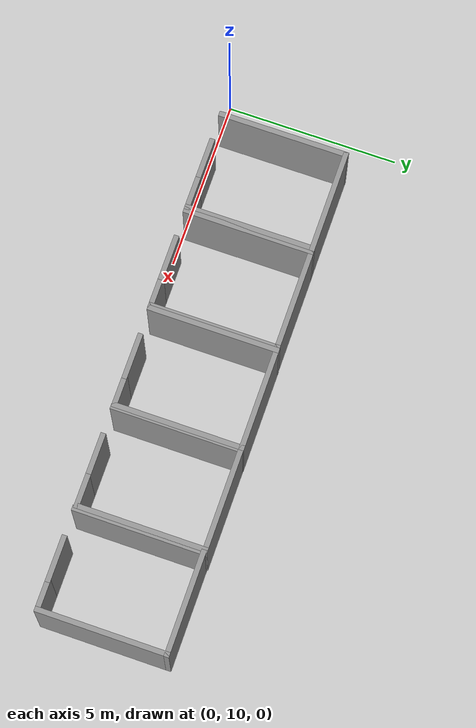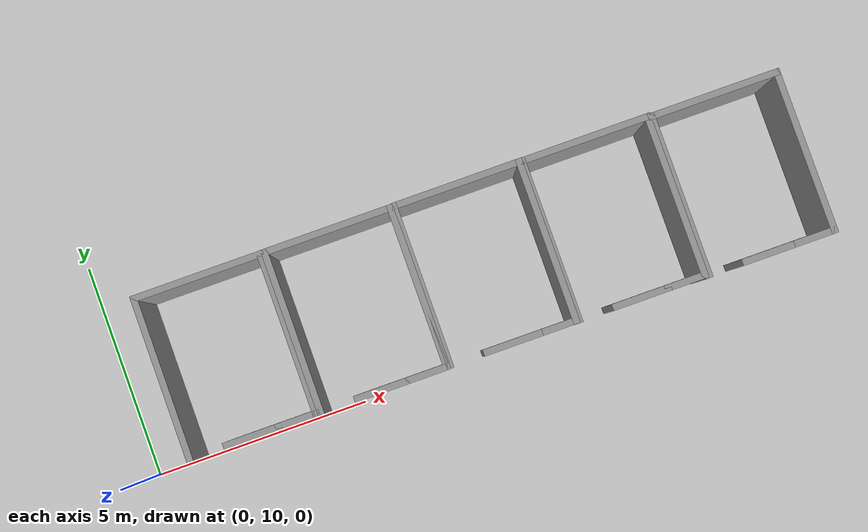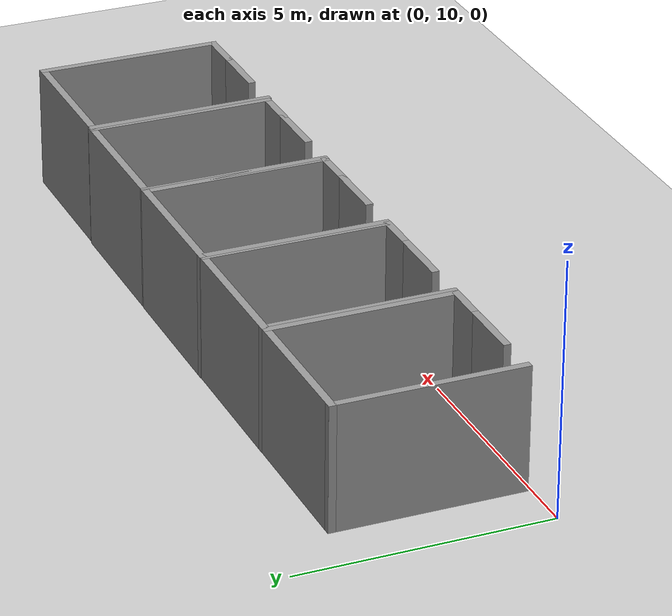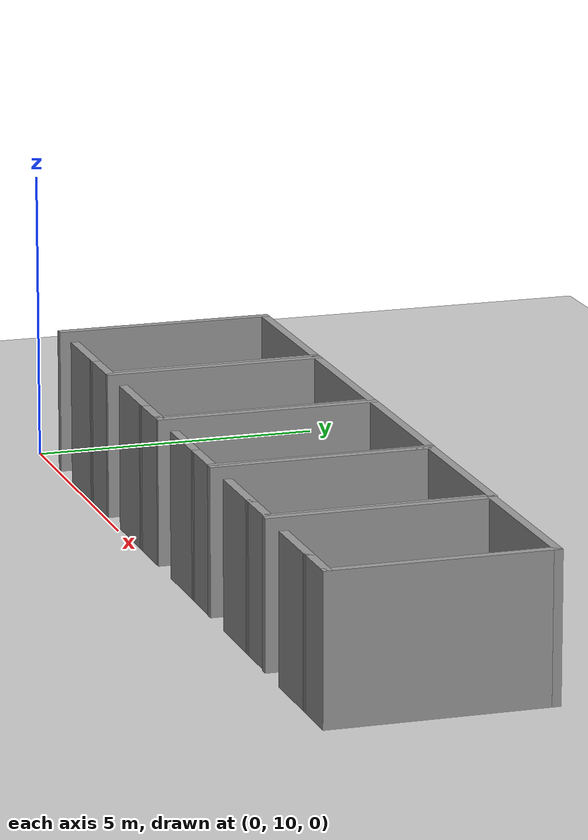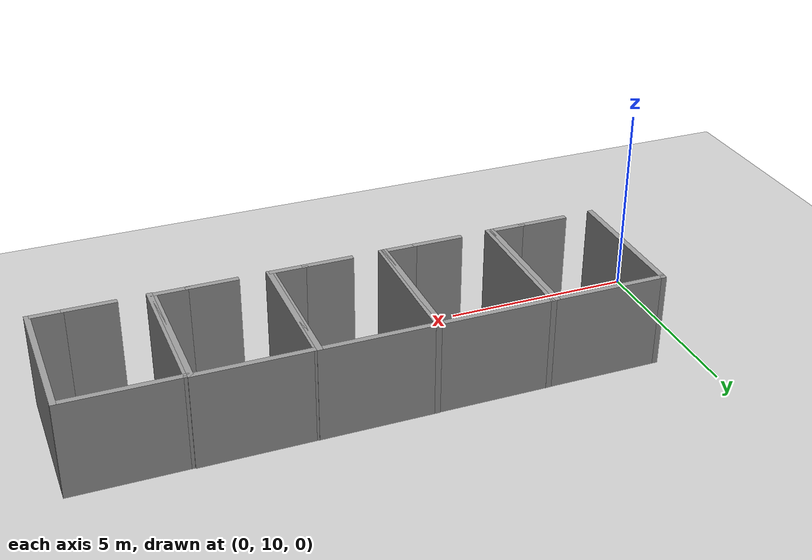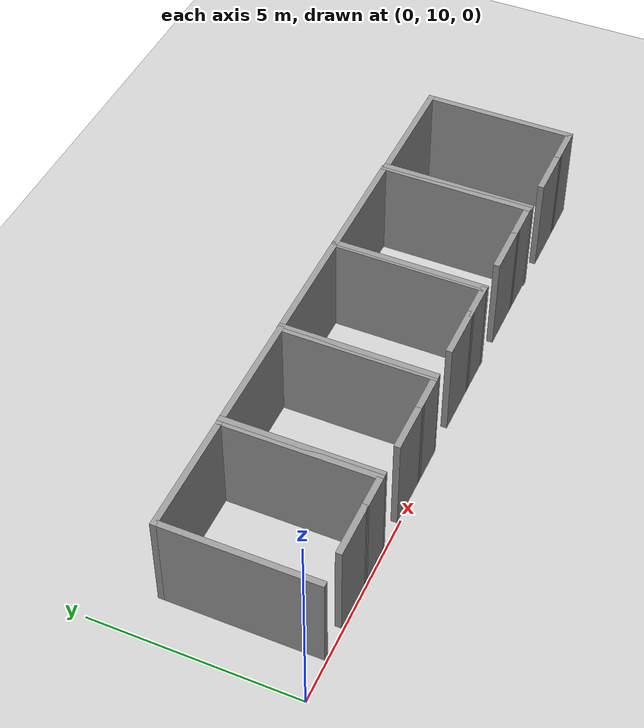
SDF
<sdf version="1.6">
 <world name="default">
  <model name="ground_plane">
   <static>1</static>
   <link name="link">
    <collision name="collision">
     <geometry><plane><normal>0 0 1</normal><size>100 100</size></plane></geometry>
     <surface><friction><ode><mu>100</mu><mu2>50</mu2></ode></friction></surface>
    </collision>
    <visual name="visual">
     <cast_shadows>0</cast_shadows>
     <geometry><plane><normal>0 0 1</normal><size>100 100</size></plane></geometry>
     <material>
      <script><uri>file://media/materials/scripts/gazebo.material</uri><name>Gazebo/Grey</name></script>
     </material>
    </visual>
   </link>
  </model>
  <model name="313-325_4">
   <link name="Wall_16">
    <pose>-1.44915 7.1e-05 0 0 0 -1.57088</pose>
    <visual name="Wall_16_Visual">
     <pose>0 0 1.25 0 -0 0</pose>
     <geometry><box><size>3.81 0.15 2.5</size></box></geometry>
     <material>
      <script><uri>file://media/materials/scripts/gazebo.material</uri><name>Gazebo/Grey</name></script>
      <ambient>1 1 1 1</ambient>
      <shader type="pixel"/>
     </material>
     <meta><layer>0</layer></meta>
    </visual>
    <collision name="Wall_16_Collision">
     <pose>0 0 1.25 0 -0 0</pose>
     <geometry><box><size>3.81 0.15 2.5</size></box></geometry>
     <surface>
      <friction>
       <ode><mu>1</mu><mu2>1</mu2><fdir1>0 0 0</fdir1><slip1>0</slip1><slip2>0</slip2></ode>
       <torsional>
        <coefficient>1</coefficient>
        <patch_radius>0</patch_radius>
        <surface_radius>0</surface_radius>
        <use_patch_radius>1</use_patch_radius>
        <ode><slip>0</slip></ode>
       </torsional>
      </friction>
      <bounce><restitution_coefficient>0</restitution_coefficient><threshold>1e+06</threshold></bounce>
      <contact>
       <collide_without_contact>0</collide_without_contact>
       <collide_without_contact_bitmask>1</collide_without_contact_bitmask>
       <collide_bitmask>1</collide_bitmask>
       <ode>
        <soft_cfm>0</soft_cfm>
        <soft_erp>0.2</soft_erp>
        <kp>1e+13</kp>
        <kd>1</kd>
        <max_vel>0.01</max_vel>
        <min_depth>0</min_depth>
       </ode>
       <bullet>
        <split_impulse>1</split_impulse>
        <split_impulse_penetration_threshold>-0.01</split_impulse_penetration_threshold>
        <soft_cfm>0</soft_cfm>
        <soft_erp>0.2</soft_erp>
        <kp>1e+13</kp>
        <kd>1</kd>
       </bullet>
      </contact>
     </surface>
    </collision>
   </link>
   <link name="Wall_18">
    <pose>1.449 -6.1e-05 0 0 -0 1.5708</pose>
    <visual name="Wall_18_Visual">
     <pose>0 0 1.25 0 -0 0</pose>
     <geometry><box><size>3.80974 0.15 2.5</size></box></geometry>
     <material>
      <script><uri>file://media/materials/scripts/gazebo.material</uri><name>Gazebo/Grey</name></script>
      <ambient>1 1 1 1</ambient>
      <shader type="pixel"/>
     </material>
     <meta><layer>0</layer></meta>
    </visual>
    <collision name="Wall_18_Collision">
     <pose>0 0 1.25 0 -0 0</pose>
     <geometry><box><size>3.80974 0.15 2.5</size></box></geometry>
     <surface>
      <friction>
       <ode><mu>1</mu><mu2>1</mu2><fdir1>0 0 0</fdir1><slip1>0</slip1><slip2>0</slip2></ode>
       <torsional>
        <coefficient>1</coefficient>
        <patch_radius>0</patch_radius>
        <surface_radius>0</surface_radius>
        <use_patch_radius>1</use_patch_radius>
        <ode><slip>0</slip></ode>
       </torsional>
      </friction>
      <bounce><restitution_coefficient>0</restitution_coefficient><threshold>1e+06</threshold></bounce>
      <contact>
       <collide_without_contact>0</collide_without_contact>
       <collide_without_contact_bitmask>1</collide_without_contact_bitmask>
       <collide_bitmask>1</collide_bitmask>
       <ode>
        <soft_cfm>0</soft_cfm>
        <soft_erp>0.2</soft_erp>
        <kp>1e+13</kp>
        <kd>1</kd>
        <max_vel>0.01</max_vel>
        <min_depth>0</min_depth>
       </ode>
       <bullet>
        <split_impulse>1</split_impulse>
        <split_impulse_penetration_threshold>-0.01</split_impulse_penetration_threshold>
        <soft_cfm>0</soft_cfm>
        <soft_erp>0.2</soft_erp>
        <kp>1e+13</kp>
        <kd>1</kd>
       </bullet>
      </contact>
     </surface>
    </collision>
   </link>
   <link name="Wall_19">
    <pose>2e-06 1.82994 0 0 -0 3.14159</pose>
    <visual name="Wall_19_Visual">
     <pose>0 0 1.25 0 -0 0</pose>
     <geometry><box><size>3.04862 0.15 2.5</size></box></geometry>
     <material>
      <script><uri>file://media/materials/scripts/gazebo.material</uri><name>Gazebo/Grey</name></script>
      <ambient>1 1 1 1</ambient>
      <shader type="pixel"/>
     </material>
     <meta><layer>0</layer></meta>
    </visual>
    <collision name="Wall_19_Collision">
     <pose>0 0 1.25 0 -0 0</pose>
     <geometry><box><size>3.04862 0.15 2.5</size></box></geometry>
     <surface>
      <friction>
       <ode><mu>1</mu><mu2>1</mu2><fdir1>0 0 0</fdir1><slip1>0</slip1><slip2>0</slip2></ode>
       <torsional>
        <coefficient>1</coefficient>
        <patch_radius>0</patch_radius>
        <surface_radius>0</surface_radius>
        <use_patch_radius>1</use_patch_radius>
        <ode><slip>0</slip></ode>
       </torsional>
      </friction>
      <bounce><restitution_coefficient>0</restitution_coefficient><threshold>1e+06</threshold></bounce>
      <contact>
       <collide_without_contact>0</collide_without_contact>
       <collide_without_contact_bitmask>1</collide_without_contact_bitmask>
       <collide_bitmask>1</collide_bitmask>
       <ode>
        <soft_cfm>0</soft_cfm>
        <soft_erp>0.2</soft_erp>
        <kp>1e+13</kp>
        <kd>1</kd>
        <max_vel>0.01</max_vel>
        <min_depth>0</min_depth>
       </ode>
       <bullet>
        <split_impulse>1</split_impulse>
        <split_impulse_penetration_threshold>-0.01</split_impulse_penetration_threshold>
        <soft_cfm>0</soft_cfm>
        <soft_erp>0.2</soft_erp>
        <kp>1e+13</kp>
        <kd>1</kd>
       </bullet>
      </contact>
     </surface>
    </collision>
   </link>
   <link name="Wall_22">
    <pose>-0.000153 -1.82993 0 0 0 -0.00022</pose>
    <visual name="Wall_22_Visual">
     <pose>0 0 1.25 0 -0 0</pose>
     <geometry><box><size>1.34831 0.15 2.5</size></box></geometry>
     <material>
      <script><uri>file://media/materials/scripts/gazebo.material</uri><name>Gazebo/Grey</name></script>
      <ambient>1 1 1 1</ambient>
      <shader type="pixel"/>
     </material>
     <meta><layer>0</layer></meta>
    </visual>
    <collision name="Wall_22_Collision">
     <pose>0 0 1.25 0 -0 0</pose>
     <geometry><box><size>1.34831 0.15 2.5</size></box></geometry>
     <surface>
      <friction>
       <ode><mu>1</mu><mu2>1</mu2><fdir1>0 0 0</fdir1><slip1>0</slip1><slip2>0</slip2></ode>
       <torsional>
        <coefficient>1</coefficient>
        <patch_radius>0</patch_radius>
        <surface_radius>0</surface_radius>
        <use_patch_radius>1</use_patch_radius>
        <ode><slip>0</slip></ode>
       </torsional>
      </friction>
      <bounce><restitution_coefficient>0</restitution_coefficient><threshold>1e+06</threshold></bounce>
      <contact>
       <collide_without_contact>0</collide_without_contact>
       <collide_without_contact_bitmask>1</collide_without_contact_bitmask>
       <collide_bitmask>1</collide_bitmask>
       <ode>
        <soft_cfm>0</soft_cfm>
        <soft_erp>0.2</soft_erp>
        <kp>1e+13</kp>
        <kd>1</kd>
        <max_vel>0.01</max_vel>
        <min_depth>0</min_depth>
       </ode>
       <bullet>
        <split_impulse>1</split_impulse>
        <split_impulse_penetration_threshold>-0.01</split_impulse_penetration_threshold>
        <soft_cfm>0</soft_cfm>
        <soft_erp>0.2</soft_erp>
        <kp>1e+13</kp>
        <kd>1</kd>
       </bullet>
      </contact>
     </surface>
    </collision>
   </link>
   <link name="Wall_23">
    <pose>1.024 -1.83006 0 0 -0 0</pose>
    <visual name="Wall_23_Visual">
     <pose>0 0 1.25 0 -0 0</pose>
     <geometry><box><size>1 0.15 2.5</size></box></geometry>
     <material>
      <script><uri>file://media/materials/scripts/gazebo.material</uri><name>Gazebo/Grey</name></script>
      <ambient>1 1 1 1</ambient>
      <shader type="pixel"/>
     </material>
     <meta><layer>0</layer></meta>
    </visual>
    <collision name="Wall_23_Collision">
     <pose>0 0 1.25 0 -0 0</pose>
     <geometry><box><size>1 0.15 2.5</size></box></geometry>
     <surface>
      <friction>
       <ode><mu>1</mu><mu2>1</mu2><fdir1>0 0 0</fdir1><slip1>0</slip1><slip2>0</slip2></ode>
       <torsional>
        <coefficient>1</coefficient>
        <patch_radius>0</patch_radius>
        <surface_radius>0</surface_radius>
        <use_patch_radius>1</use_patch_radius>
        <ode><slip>0</slip></ode>
       </torsional>
      </friction>
      <bounce><restitution_coefficient>0</restitution_coefficient><threshold>1e+06</threshold></bounce>
      <contact>
       <collide_without_contact>0</collide_without_contact>
       <collide_without_contact_bitmask>1</collide_without_contact_bitmask>
       <collide_bitmask>1</collide_bitmask>
       <ode>
        <soft_cfm>0</soft_cfm>
        <soft_erp>0.2</soft_erp>
        <kp>1e+13</kp>
        <kd>1</kd>
        <max_vel>0.01</max_vel>
        <min_depth>0</min_depth>
       </ode>
       <bullet>
        <split_impulse>1</split_impulse>
        <split_impulse_penetration_threshold>-0.01</split_impulse_penetration_threshold>
        <soft_cfm>0</soft_cfm>
        <soft_erp>0.2</soft_erp>
        <kp>1e+13</kp>
        <kd>1</kd>
       </bullet>
      </contact>
     </surface>
    </collision>
   </link>
   <static>1</static>
   <pose>14.4898 11.9433 0 0 -0 0</pose>
  </model>
  <model name="313-325_5">
   <link name="Wall_16">
    <pose>-1.44915 7.1e-05 0 0 0 -1.57088</pose>
    <visual name="Wall_16_Visual">
     <pose>0 0 1.25 0 -0 0</pose>
     <geometry><box><size>3.81 0.15 2.5</size></box></geometry>
     <material>
      <script><uri>file://media/materials/scripts/gazebo.material</uri><name>Gazebo/Grey</name></script>
      <ambient>1 1 1 1</ambient>
      <shader type="pixel"/>
     </material>
     <meta><layer>0</layer></meta>
    </visual>
    <collision name="Wall_16_Collision">
     <pose>0 0 1.25 0 -0 0</pose>
     <geometry><box><size>3.81 0.15 2.5</size></box></geometry>
     <surface>
      <friction>
       <ode><mu>1</mu><mu2>1</mu2><fdir1>0 0 0</fdir1><slip1>0</slip1><slip2>0</slip2></ode>
       <torsional>
        <coefficient>1</coefficient>
        <patch_radius>0</patch_radius>
        <surface_radius>0</surface_radius>
        <use_patch_radius>1</use_patch_radius>
        <ode><slip>0</slip></ode>
       </torsional>
      </friction>
      <bounce><restitution_coefficient>0</restitution_coefficient><threshold>1e+06</threshold></bounce>
      <contact>
       <collide_without_contact>0</collide_without_contact>
       <collide_without_contact_bitmask>1</collide_without_contact_bitmask>
       <collide_bitmask>1</collide_bitmask>
       <ode>
        <soft_cfm>0</soft_cfm>
        <soft_erp>0.2</soft_erp>
        <kp>1e+13</kp>
        <kd>1</kd>
        <max_vel>0.01</max_vel>
        <min_depth>0</min_depth>
       </ode>
       <bullet>
        <split_impulse>1</split_impulse>
        <split_impulse_penetration_threshold>-0.01</split_impulse_penetration_threshold>
        <soft_cfm>0</soft_cfm>
        <soft_erp>0.2</soft_erp>
        <kp>1e+13</kp>
        <kd>1</kd>
       </bullet>
      </contact>
     </surface>
    </collision>
   </link>
   <link name="Wall_18">
    <pose>1.449 -6.1e-05 0 0 -0 1.5708</pose>
    <visual name="Wall_18_Visual">
     <pose>0 0 1.25 0 -0 0</pose>
     <geometry><box><size>3.80974 0.15 2.5</size></box></geometry>
     <material>
      <script><uri>file://media/materials/scripts/gazebo.material</uri><name>Gazebo/Grey</name></script>
      <ambient>1 1 1 1</ambient>
      <shader type="pixel"/>
     </material>
     <meta><layer>0</layer></meta>
    </visual>
    <collision name="Wall_18_Collision">
     <pose>0 0 1.25 0 -0 0</pose>
     <geometry><box><size>3.80974 0.15 2.5</size></box></geometry>
     <surface>
      <friction>
       <ode><mu>1</mu><mu2>1</mu2><fdir1>0 0 0</fdir1><slip1>0</slip1><slip2>0</slip2></ode>
       <torsional>
        <coefficient>1</coefficient>
        <patch_radius>0</patch_radius>
        <surface_radius>0</surface_radius>
        <use_patch_radius>1</use_patch_radius>
        <ode><slip>0</slip></ode>
       </torsional>
      </friction>
      <bounce><restitution_coefficient>0</restitution_coefficient><threshold>1e+06</threshold></bounce>
      <contact>
       <collide_without_contact>0</collide_without_contact>
       <collide_without_contact_bitmask>1</collide_without_contact_bitmask>
       <collide_bitmask>1</collide_bitmask>
       <ode>
        <soft_cfm>0</soft_cfm>
        <soft_erp>0.2</soft_erp>
        <kp>1e+13</kp>
        <kd>1</kd>
        <max_vel>0.01</max_vel>
        <min_depth>0</min_depth>
       </ode>
       <bullet>
        <split_impulse>1</split_impulse>
        <split_impulse_penetration_threshold>-0.01</split_impulse_penetration_threshold>
        <soft_cfm>0</soft_cfm>
        <soft_erp>0.2</soft_erp>
        <kp>1e+13</kp>
        <kd>1</kd>
       </bullet>
      </contact>
     </surface>
    </collision>
   </link>
   <link name="Wall_19">
    <pose>2e-06 1.82994 0 0 -0 3.14159</pose>
    <visual name="Wall_19_Visual">
     <pose>0 0 1.25 0 -0 0</pose>
     <geometry><box><size>3.04862 0.15 2.5</size></box></geometry>
     <material>
      <script><uri>file://media/materials/scripts/gazebo.material</uri><name>Gazebo/Grey</name></script>
      <ambient>1 1 1 1</ambient>
      <shader type="pixel"/>
     </material>
     <meta><layer>0</layer></meta>
    </visual>
    <collision name="Wall_19_Collision">
     <pose>0 0 1.25 0 -0 0</pose>
     <geometry><box><size>3.04862 0.15 2.5</size></box></geometry>
     <surface>
      <friction>
       <ode><mu>1</mu><mu2>1</mu2><fdir1>0 0 0</fdir1><slip1>0</slip1><slip2>0</slip2></ode>
       <torsional>
        <coefficient>1</coefficient>
        <patch_radius>0</patch_radius>
        <surface_radius>0</surface_radius>
        <use_patch_radius>1</use_patch_radius>
        <ode><slip>0</slip></ode>
       </torsional>
      </friction>
      <bounce><restitution_coefficient>0</restitution_coefficient><threshold>1e+06</threshold></bounce>
      <contact>
       <collide_without_contact>0</collide_without_contact>
       <collide_without_contact_bitmask>1</collide_without_contact_bitmask>
       <collide_bitmask>1</collide_bitmask>
       <ode>
        <soft_cfm>0</soft_cfm>
        <soft_erp>0.2</soft_erp>
        <kp>1e+13</kp>
        <kd>1</kd>
        <max_vel>0.01</max_vel>
        <min_depth>0</min_depth>
       </ode>
       <bullet>
        <split_impulse>1</split_impulse>
        <split_impulse_penetration_threshold>-0.01</split_impulse_penetration_threshold>
        <soft_cfm>0</soft_cfm>
        <soft_erp>0.2</soft_erp>
        <kp>1e+13</kp>
        <kd>1</kd>
       </bullet>
      </contact>
     </surface>
    </collision>
   </link>
   <link name="Wall_22">
    <pose>-0.000153 -1.82993 0 0 0 -0.00022</pose>
    <visual name="Wall_22_Visual">
     <pose>0 0 1.25 0 -0 0</pose>
     <geometry><box><size>1.34831 0.15 2.5</size></box></geometry>
     <material>
      <script><uri>file://media/materials/scripts/gazebo.material</uri><name>Gazebo/Grey</name></script>
      <ambient>1 1 1 1</ambient>
      <shader type="pixel"/>
     </material>
     <meta><layer>0</layer></meta>
    </visual>
    <collision name="Wall_22_Collision">
     <pose>0 0 1.25 0 -0 0</pose>
     <geometry><box><size>1.34831 0.15 2.5</size></box></geometry>
     <surface>
      <friction>
       <ode><mu>1</mu><mu2>1</mu2><fdir1>0 0 0</fdir1><slip1>0</slip1><slip2>0</slip2></ode>
       <torsional>
        <coefficient>1</coefficient>
        <patch_radius>0</patch_radius>
        <surface_radius>0</surface_radius>
        <use_patch_radius>1</use_patch_radius>
        <ode><slip>0</slip></ode>
       </torsional>
      </friction>
      <bounce><restitution_coefficient>0</restitution_coefficient><threshold>1e+06</threshold></bounce>
      <contact>
       <collide_without_contact>0</collide_without_contact>
       <collide_without_contact_bitmask>1</collide_without_contact_bitmask>
       <collide_bitmask>1</collide_bitmask>
       <ode>
        <soft_cfm>0</soft_cfm>
        <soft_erp>0.2</soft_erp>
        <kp>1e+13</kp>
        <kd>1</kd>
        <max_vel>0.01</max_vel>
        <min_depth>0</min_depth>
       </ode>
       <bullet>
        <split_impulse>1</split_impulse>
        <split_impulse_penetration_threshold>-0.01</split_impulse_penetration_threshold>
        <soft_cfm>0</soft_cfm>
        <soft_erp>0.2</soft_erp>
        <kp>1e+13</kp>
        <kd>1</kd>
       </bullet>
      </contact>
     </surface>
    </collision>
   </link>
   <link name="Wall_23">
    <pose>1.024 -1.83006 0 0 -0 0</pose>
    <visual name="Wall_23_Visual">
     <pose>0 0 1.25 0 -0 0</pose>
     <geometry><box><size>1 0.15 2.5</size></box></geometry>
     <material>
      <script><uri>file://media/materials/scripts/gazebo.material</uri><name>Gazebo/Grey</name></script>
      <ambient>1 1 1 1</ambient>
      <shader type="pixel"/>
     </material>
     <meta><layer>0</layer></meta>
    </visual>
    <collision name="Wall_23_Collision">
     <pose>0 0 1.25 0 -0 0</pose>
     <geometry><box><size>1 0.15 2.5</size></box></geometry>
     <surface>
      <friction>
       <ode><mu>1</mu><mu2>1</mu2><fdir1>0 0 0</fdir1><slip1>0</slip1><slip2>0</slip2></ode>
       <torsional>
        <coefficient>1</coefficient>
        <patch_radius>0</patch_radius>
        <surface_radius>0</surface_radius>
        <use_patch_radius>1</use_patch_radius>
        <ode><slip>0</slip></ode>
       </torsional>
      </friction>
      <bounce><restitution_coefficient>0</restitution_coefficient><threshold>1e+06</threshold></bounce>
      <contact>
       <collide_without_contact>0</collide_without_contact>
       <collide_without_contact_bitmask>1</collide_without_contact_bitmask>
       <collide_bitmask>1</collide_bitmask>
       <ode>
        <soft_cfm>0</soft_cfm>
        <soft_erp>0.2</soft_erp>
        <kp>1e+13</kp>
        <kd>1</kd>
        <max_vel>0.01</max_vel>
        <min_depth>0</min_depth>
       </ode>
       <bullet>
        <split_impulse>1</split_impulse>
        <split_impulse_penetration_threshold>-0.01</split_impulse_penetration_threshold>
        <soft_cfm>0</soft_cfm>
        <soft_erp>0.2</soft_erp>
        <kp>1e+13</kp>
        <kd>1</kd>
       </bullet>
      </contact>
     </surface>
    </collision>
   </link>
   <static>1</static>
   <pose>11.5072 11.9674 0 0 -0 0</pose>
  </model>
  <model name="313-325_6">
   <link name="Wall_16">
    <pose>-1.44915 7.1e-05 0 0 0 -1.57088</pose>
    <visual name="Wall_16_Visual">
     <pose>0 0 1.25 0 -0 0</pose>
     <geometry><box><size>3.81 0.15 2.5</size></box></geometry>
     <material>
      <script><uri>file://media/materials/scripts/gazebo.material</uri><name>Gazebo/Grey</name></script>
      <ambient>1 1 1 1</ambient>
      <shader type="pixel"/>
     </material>
     <meta><layer>0</layer></meta>
    </visual>
    <collision name="Wall_16_Collision">
     <pose>0 0 1.25 0 -0 0</pose>
     <geometry><box><size>3.81 0.15 2.5</size></box></geometry>
     <surface>
      <friction>
       <ode><mu>1</mu><mu2>1</mu2><fdir1>0 0 0</fdir1><slip1>0</slip1><slip2>0</slip2></ode>
       <torsional>
        <coefficient>1</coefficient>
        <patch_radius>0</patch_radius>
        <surface_radius>0</surface_radius>
        <use_patch_radius>1</use_patch_radius>
        <ode><slip>0</slip></ode>
       </torsional>
      </friction>
      <bounce><restitution_coefficient>0</restitution_coefficient><threshold>1e+06</threshold></bounce>
      <contact>
       <collide_without_contact>0</collide_without_contact>
       <collide_without_contact_bitmask>1</collide_without_contact_bitmask>
       <collide_bitmask>1</collide_bitmask>
       <ode>
        <soft_cfm>0</soft_cfm>
        <soft_erp>0.2</soft_erp>
        <kp>1e+13</kp>
        <kd>1</kd>
        <max_vel>0.01</max_vel>
        <min_depth>0</min_depth>
       </ode>
       <bullet>
        <split_impulse>1</split_impulse>
        <split_impulse_penetration_threshold>-0.01</split_impulse_penetration_threshold>
        <soft_cfm>0</soft_cfm>
        <soft_erp>0.2</soft_erp>
        <kp>1e+13</kp>
        <kd>1</kd>
       </bullet>
      </contact>
     </surface>
    </collision>
   </link>
   <link name="Wall_18">
    <pose>1.449 -6.1e-05 0 0 -0 1.5708</pose>
    <visual name="Wall_18_Visual">
     <pose>0 0 1.25 0 -0 0</pose>
     <geometry><box><size>3.80974 0.15 2.5</size></box></geometry>
     <material>
      <script><uri>file://media/materials/scripts/gazebo.material</uri><name>Gazebo/Grey</name></script>
      <ambient>1 1 1 1</ambient>
      <shader type="pixel"/>
     </material>
     <meta><layer>0</layer></meta>
    </visual>
    <collision name="Wall_18_Collision">
     <pose>0 0 1.25 0 -0 0</pose>
     <geometry><box><size>3.80974 0.15 2.5</size></box></geometry>
     <surface>
      <friction>
       <ode><mu>1</mu><mu2>1</mu2><fdir1>0 0 0</fdir1><slip1>0</slip1><slip2>0</slip2></ode>
       <torsional>
        <coefficient>1</coefficient>
        <patch_radius>0</patch_radius>
        <surface_radius>0</surface_radius>
        <use_patch_radius>1</use_patch_radius>
        <ode><slip>0</slip></ode>
       </torsional>
      </friction>
      <bounce><restitution_coefficient>0</restitution_coefficient><threshold>1e+06</threshold></bounce>
      <contact>
       <collide_without_contact>0</collide_without_contact>
       <collide_without_contact_bitmask>1</collide_without_contact_bitmask>
       <collide_bitmask>1</collide_bitmask>
       <ode>
        <soft_cfm>0</soft_cfm>
        <soft_erp>0.2</soft_erp>
        <kp>1e+13</kp>
        <kd>1</kd>
        <max_vel>0.01</max_vel>
        <min_depth>0</min_depth>
       </ode>
       <bullet>
        <split_impulse>1</split_impulse>
        <split_impulse_penetration_threshold>-0.01</split_impulse_penetration_threshold>
        <soft_cfm>0</soft_cfm>
        <soft_erp>0.2</soft_erp>
        <kp>1e+13</kp>
        <kd>1</kd>
       </bullet>
      </contact>
     </surface>
    </collision>
   </link>
   <link name="Wall_19">
    <pose>2e-06 1.82994 0 0 -0 3.14159</pose>
    <visual name="Wall_19_Visual">
     <pose>0 0 1.25 0 -0 0</pose>
     <geometry><box><size>3.04862 0.15 2.5</size></box></geometry>
     <material>
      <script><uri>file://media/materials/scripts/gazebo.material</uri><name>Gazebo/Grey</name></script>
      <ambient>1 1 1 1</ambient>
      <shader type="pixel"/>
     </material>
     <meta><layer>0</layer></meta>
    </visual>
    <collision name="Wall_19_Collision">
     <pose>0 0 1.25 0 -0 0</pose>
     <geometry><box><size>3.04862 0.15 2.5</size></box></geometry>
     <surface>
      <friction>
       <ode><mu>1</mu><mu2>1</mu2><fdir1>0 0 0</fdir1><slip1>0</slip1><slip2>0</slip2></ode>
       <torsional>
        <coefficient>1</coefficient>
        <patch_radius>0</patch_radius>
        <surface_radius>0</surface_radius>
        <use_patch_radius>1</use_patch_radius>
        <ode><slip>0</slip></ode>
       </torsional>
      </friction>
      <bounce><restitution_coefficient>0</restitution_coefficient><threshold>1e+06</threshold></bounce>
      <contact>
       <collide_without_contact>0</collide_without_contact>
       <collide_without_contact_bitmask>1</collide_without_contact_bitmask>
       <collide_bitmask>1</collide_bitmask>
       <ode>
        <soft_cfm>0</soft_cfm>
        <soft_erp>0.2</soft_erp>
        <kp>1e+13</kp>
        <kd>1</kd>
        <max_vel>0.01</max_vel>
        <min_depth>0</min_depth>
       </ode>
       <bullet>
        <split_impulse>1</split_impulse>
        <split_impulse_penetration_threshold>-0.01</split_impulse_penetration_threshold>
        <soft_cfm>0</soft_cfm>
        <soft_erp>0.2</soft_erp>
        <kp>1e+13</kp>
        <kd>1</kd>
       </bullet>
      </contact>
     </surface>
    </collision>
   </link>
   <link name="Wall_22">
    <pose>-0.000153 -1.82993 0 0 0 -0.00022</pose>
    <visual name="Wall_22_Visual">
     <pose>0 0 1.25 0 -0 0</pose>
     <geometry><box><size>1.34831 0.15 2.5</size></box></geometry>
     <material>
      <script><uri>file://media/materials/scripts/gazebo.material</uri><name>Gazebo/Grey</name></script>
      <ambient>1 1 1 1</ambient>
      <shader type="pixel"/>
     </material>
     <meta><layer>0</layer></meta>
    </visual>
    <collision name="Wall_22_Collision">
     <pose>0 0 1.25 0 -0 0</pose>
     <geometry><box><size>1.34831 0.15 2.5</size></box></geometry>
     <surface>
      <friction>
       <ode><mu>1</mu><mu2>1</mu2><fdir1>0 0 0</fdir1><slip1>0</slip1><slip2>0</slip2></ode>
       <torsional>
        <coefficient>1</coefficient>
        <patch_radius>0</patch_radius>
        <surface_radius>0</surface_radius>
        <use_patch_radius>1</use_patch_radius>
        <ode><slip>0</slip></ode>
       </torsional>
      </friction>
      <bounce><restitution_coefficient>0</restitution_coefficient><threshold>1e+06</threshold></bounce>
      <contact>
       <collide_without_contact>0</collide_without_contact>
       <collide_without_contact_bitmask>1</collide_without_contact_bitmask>
       <collide_bitmask>1</collide_bitmask>
       <ode>
        <soft_cfm>0</soft_cfm>
        <soft_erp>0.2</soft_erp>
        <kp>1e+13</kp>
        <kd>1</kd>
        <max_vel>0.01</max_vel>
        <min_depth>0</min_depth>
       </ode>
       <bullet>
        <split_impulse>1</split_impulse>
        <split_impulse_penetration_threshold>-0.01</split_impulse_penetration_threshold>
        <soft_cfm>0</soft_cfm>
        <soft_erp>0.2</soft_erp>
        <kp>1e+13</kp>
        <kd>1</kd>
       </bullet>
      </contact>
     </surface>
    </collision>
   </link>
   <link name="Wall_23">
    <pose>1.024 -1.83006 0 0 -0 0</pose>
    <visual name="Wall_23_Visual">
     <pose>0 0 1.25 0 -0 0</pose>
     <geometry><box><size>1 0.15 2.5</size></box></geometry>
     <material>
      <script><uri>file://media/materials/scripts/gazebo.material</uri><name>Gazebo/Grey</name></script>
      <ambient>1 1 1 1</ambient>
      <shader type="pixel"/>
     </material>
     <meta><layer>0</layer></meta>
    </visual>
    <collision name="Wall_23_Collision">
     <pose>0 0 1.25 0 -0 0</pose>
     <geometry><box><size>1 0.15 2.5</size></box></geometry>
     <surface>
      <friction>
       <ode><mu>1</mu><mu2>1</mu2><fdir1>0 0 0</fdir1><slip1>0</slip1><slip2>0</slip2></ode>
       <torsional>
        <coefficient>1</coefficient>
        <patch_radius>0</patch_radius>
        <surface_radius>0</surface_radius>
        <use_patch_radius>1</use_patch_radius>
        <ode><slip>0</slip></ode>
       </torsional>
      </friction>
      <bounce><restitution_coefficient>0</restitution_coefficient><threshold>1e+06</threshold></bounce>
      <contact>
       <collide_without_contact>0</collide_without_contact>
       <collide_without_contact_bitmask>1</collide_without_contact_bitmask>
       <collide_bitmask>1</collide_bitmask>
       <ode>
        <soft_cfm>0</soft_cfm>
        <soft_erp>0.2</soft_erp>
        <kp>1e+13</kp>
        <kd>1</kd>
        <max_vel>0.01</max_vel>
        <min_depth>0</min_depth>
       </ode>
       <bullet>
        <split_impulse>1</split_impulse>
        <split_impulse_penetration_threshold>-0.01</split_impulse_penetration_threshold>
        <soft_cfm>0</soft_cfm>
        <soft_erp>0.2</soft_erp>
        <kp>1e+13</kp>
        <kd>1</kd>
       </bullet>
      </contact>
     </surface>
    </collision>
   </link>
   <static>1</static>
   <pose>8.54443 11.9738 0 0 -0 0</pose>
  </model>
  <model name="313-325_7">
   <link name="Wall_16">
    <pose>-1.44915 7.1e-05 0 0 0 -1.57088</pose>
    <visual name="Wall_16_Visual">
     <pose>0 0 1.25 0 -0 0</pose>
     <geometry><box><size>3.81 0.15 2.5</size></box></geometry>
     <material>
      <script><uri>file://media/materials/scripts/gazebo.material</uri><name>Gazebo/Grey</name></script>
      <ambient>1 1 1 1</ambient>
      <shader type="pixel"/>
     </material>
     <meta><layer>0</layer></meta>
    </visual>
    <collision name="Wall_16_Collision">
     <pose>0 0 1.25 0 -0 0</pose>
     <geometry><box><size>3.81 0.15 2.5</size></box></geometry>
     <surface>
      <friction>
       <ode><mu>1</mu><mu2>1</mu2><fdir1>0 0 0</fdir1><slip1>0</slip1><slip2>0</slip2></ode>
       <torsional>
        <coefficient>1</coefficient>
        <patch_radius>0</patch_radius>
        <surface_radius>0</surface_radius>
        <use_patch_radius>1</use_patch_radius>
        <ode><slip>0</slip></ode>
       </torsional>
      </friction>
      <bounce><restitution_coefficient>0</restitution_coefficient><threshold>1e+06</threshold></bounce>
      <contact>
       <collide_without_contact>0</collide_without_contact>
       <collide_without_contact_bitmask>1</collide_without_contact_bitmask>
       <collide_bitmask>1</collide_bitmask>
       <ode>
        <soft_cfm>0</soft_cfm>
        <soft_erp>0.2</soft_erp>
        <kp>1e+13</kp>
        <kd>1</kd>
        <max_vel>0.01</max_vel>
        <min_depth>0</min_depth>
       </ode>
       <bullet>
        <split_impulse>1</split_impulse>
        <split_impulse_penetration_threshold>-0.01</split_impulse_penetration_threshold>
        <soft_cfm>0</soft_cfm>
        <soft_erp>0.2</soft_erp>
        <kp>1e+13</kp>
        <kd>1</kd>
       </bullet>
      </contact>
     </surface>
    </collision>
   </link>
   <link name="Wall_18">
    <pose>1.449 -6.1e-05 0 0 -0 1.5708</pose>
    <visual name="Wall_18_Visual">
     <pose>0 0 1.25 0 -0 0</pose>
     <geometry><box><size>3.80974 0.15 2.5</size></box></geometry>
     <material>
      <script><uri>file://media/materials/scripts/gazebo.material</uri><name>Gazebo/Grey</name></script>
      <ambient>1 1 1 1</ambient>
      <shader type="pixel"/>
     </material>
     <meta><layer>0</layer></meta>
    </visual>
    <collision name="Wall_18_Collision">
     <pose>0 0 1.25 0 -0 0</pose>
     <geometry><box><size>3.80974 0.15 2.5</size></box></geometry>
     <surface>
      <friction>
       <ode><mu>1</mu><mu2>1</mu2><fdir1>0 0 0</fdir1><slip1>0</slip1><slip2>0</slip2></ode>
       <torsional>
        <coefficient>1</coefficient>
        <patch_radius>0</patch_radius>
        <surface_radius>0</surface_radius>
        <use_patch_radius>1</use_patch_radius>
        <ode><slip>0</slip></ode>
       </torsional>
      </friction>
      <bounce><restitution_coefficient>0</restitution_coefficient><threshold>1e+06</threshold></bounce>
      <contact>
       <collide_without_contact>0</collide_without_contact>
       <collide_without_contact_bitmask>1</collide_without_contact_bitmask>
       <collide_bitmask>1</collide_bitmask>
       <ode>
        <soft_cfm>0</soft_cfm>
        <soft_erp>0.2</soft_erp>
        <kp>1e+13</kp>
        <kd>1</kd>
        <max_vel>0.01</max_vel>
        <min_depth>0</min_depth>
       </ode>
       <bullet>
        <split_impulse>1</split_impulse>
        <split_impulse_penetration_threshold>-0.01</split_impulse_penetration_threshold>
        <soft_cfm>0</soft_cfm>
        <soft_erp>0.2</soft_erp>
        <kp>1e+13</kp>
        <kd>1</kd>
       </bullet>
      </contact>
     </surface>
    </collision>
   </link>
   <link name="Wall_19">
    <pose>2e-06 1.82994 0 0 -0 3.14159</pose>
    <visual name="Wall_19_Visual">
     <pose>0 0 1.25 0 -0 0</pose>
     <geometry><box><size>3.04862 0.15 2.5</size></box></geometry>
     <material>
      <script><uri>file://media/materials/scripts/gazebo.material</uri><name>Gazebo/Grey</name></script>
      <ambient>1 1 1 1</ambient>
      <shader type="pixel"/>
     </material>
     <meta><layer>0</layer></meta>
    </visual>
    <collision name="Wall_19_Collision">
     <pose>0 0 1.25 0 -0 0</pose>
     <geometry><box><size>3.04862 0.15 2.5</size></box></geometry>
     <surface>
      <friction>
       <ode><mu>1</mu><mu2>1</mu2><fdir1>0 0 0</fdir1><slip1>0</slip1><slip2>0</slip2></ode>
       <torsional>
        <coefficient>1</coefficient>
        <patch_radius>0</patch_radius>
        <surface_radius>0</surface_radius>
        <use_patch_radius>1</use_patch_radius>
        <ode><slip>0</slip></ode>
       </torsional>
      </friction>
      <bounce><restitution_coefficient>0</restitution_coefficient><threshold>1e+06</threshold></bounce>
      <contact>
       <collide_without_contact>0</collide_without_contact>
       <collide_without_contact_bitmask>1</collide_without_contact_bitmask>
       <collide_bitmask>1</collide_bitmask>
       <ode>
        <soft_cfm>0</soft_cfm>
        <soft_erp>0.2</soft_erp>
        <kp>1e+13</kp>
        <kd>1</kd>
        <max_vel>0.01</max_vel>
        <min_depth>0</min_depth>
       </ode>
       <bullet>
        <split_impulse>1</split_impulse>
        <split_impulse_penetration_threshold>-0.01</split_impulse_penetration_threshold>
        <soft_cfm>0</soft_cfm>
        <soft_erp>0.2</soft_erp>
        <kp>1e+13</kp>
        <kd>1</kd>
       </bullet>
      </contact>
     </surface>
    </collision>
   </link>
   <link name="Wall_22">
    <pose>-0.000153 -1.82993 0 0 0 -0.00022</pose>
    <visual name="Wall_22_Visual">
     <pose>0 0 1.25 0 -0 0</pose>
     <geometry><box><size>1.34831 0.15 2.5</size></box></geometry>
     <material>
      <script><uri>file://media/materials/scripts/gazebo.material</uri><name>Gazebo/Grey</name></script>
      <ambient>1 1 1 1</ambient>
      <shader type="pixel"/>
     </material>
     <meta><layer>0</layer></meta>
    </visual>
    <collision name="Wall_22_Collision">
     <pose>0 0 1.25 0 -0 0</pose>
     <geometry><box><size>1.34831 0.15 2.5</size></box></geometry>
     <surface>
      <friction>
       <ode><mu>1</mu><mu2>1</mu2><fdir1>0 0 0</fdir1><slip1>0</slip1><slip2>0</slip2></ode>
       <torsional>
        <coefficient>1</coefficient>
        <patch_radius>0</patch_radius>
        <surface_radius>0</surface_radius>
        <use_patch_radius>1</use_patch_radius>
        <ode><slip>0</slip></ode>
       </torsional>
      </friction>
      <bounce><restitution_coefficient>0</restitution_coefficient><threshold>1e+06</threshold></bounce>
      <contact>
       <collide_without_contact>0</collide_without_contact>
       <collide_without_contact_bitmask>1</collide_without_contact_bitmask>
       <collide_bitmask>1</collide_bitmask>
       <ode>
        <soft_cfm>0</soft_cfm>
        <soft_erp>0.2</soft_erp>
        <kp>1e+13</kp>
        <kd>1</kd>
        <max_vel>0.01</max_vel>
        <min_depth>0</min_depth>
       </ode>
       <bullet>
        <split_impulse>1</split_impulse>
        <split_impulse_penetration_threshold>-0.01</split_impulse_penetration_threshold>
        <soft_cfm>0</soft_cfm>
        <soft_erp>0.2</soft_erp>
        <kp>1e+13</kp>
        <kd>1</kd>
       </bullet>
      </contact>
     </surface>
    </collision>
   </link>
   <link name="Wall_23">
    <pose>1.024 -1.83006 0 0 -0 0</pose>
    <visual name="Wall_23_Visual">
     <pose>0 0 1.25 0 -0 0</pose>
     <geometry><box><size>1 0.15 2.5</size></box></geometry>
     <material>
      <script><uri>file://media/materials/scripts/gazebo.material</uri><name>Gazebo/Grey</name></script>
      <ambient>1 1 1 1</ambient>
      <shader type="pixel"/>
     </material>
     <meta><layer>0</layer></meta>
    </visual>
    <collision name="Wall_23_Collision">
     <pose>0 0 1.25 0 -0 0</pose>
     <geometry><box><size>1 0.15 2.5</size></box></geometry>
     <surface>
      <friction>
       <ode><mu>1</mu><mu2>1</mu2><fdir1>0 0 0</fdir1><slip1>0</slip1><slip2>0</slip2></ode>
       <torsional>
        <coefficient>1</coefficient>
        <patch_radius>0</patch_radius>
        <surface_radius>0</surface_radius>
        <use_patch_radius>1</use_patch_radius>
        <ode><slip>0</slip></ode>
       </torsional>
      </friction>
      <bounce><restitution_coefficient>0</restitution_coefficient><threshold>1e+06</threshold></bounce>
      <contact>
       <collide_without_contact>0</collide_without_contact>
       <collide_without_contact_bitmask>1</collide_without_contact_bitmask>
       <collide_bitmask>1</collide_bitmask>
       <ode>
        <soft_cfm>0</soft_cfm>
        <soft_erp>0.2</soft_erp>
        <kp>1e+13</kp>
        <kd>1</kd>
        <max_vel>0.01</max_vel>
        <min_depth>0</min_depth>
       </ode>
       <bullet>
        <split_impulse>1</split_impulse>
        <split_impulse_penetration_threshold>-0.01</split_impulse_penetration_threshold>
        <soft_cfm>0</soft_cfm>
        <soft_erp>0.2</soft_erp>
        <kp>1e+13</kp>
        <kd>1</kd>
       </bullet>
      </contact>
     </surface>
    </collision>
   </link>
   <static>1</static>
   <pose>5.57045 11.9656 0 0 -0 0</pose>
  </model>
  <model name="313-325_8">
   <link name="Wall_16">
    <pose>-1.44915 7.1e-05 0 0 0 -1.57088</pose>
    <visual name="Wall_16_Visual">
     <pose>0 0 1.25 0 -0 0</pose>
     <geometry><box><size>3.81 0.15 2.5</size></box></geometry>
     <material>
      <script><uri>file://media/materials/scripts/gazebo.material</uri><name>Gazebo/Grey</name></script>
      <ambient>1 1 1 1</ambient>
      <shader type="pixel"/>
     </material>
     <meta><layer>0</layer></meta>
    </visual>
    <collision name="Wall_16_Collision">
     <pose>0 0 1.25 0 -0 0</pose>
     <geometry><box><size>3.81 0.15 2.5</size></box></geometry>
     <surface>
      <friction>
       <ode><mu>1</mu><mu2>1</mu2><fdir1>0 0 0</fdir1><slip1>0</slip1><slip2>0</slip2></ode>
       <torsional>
        <coefficient>1</coefficient>
        <patch_radius>0</patch_radius>
        <surface_radius>0</surface_radius>
        <use_patch_radius>1</use_patch_radius>
        <ode><slip>0</slip></ode>
       </torsional>
      </friction>
      <bounce><restitution_coefficient>0</restitution_coefficient><threshold>1e+06</threshold></bounce>
      <contact>
       <collide_without_contact>0</collide_without_contact>
       <collide_without_contact_bitmask>1</collide_without_contact_bitmask>
       <collide_bitmask>1</collide_bitmask>
       <ode>
        <soft_cfm>0</soft_cfm>
        <soft_erp>0.2</soft_erp>
        <kp>1e+13</kp>
        <kd>1</kd>
        <max_vel>0.01</max_vel>
        <min_depth>0</min_depth>
       </ode>
       <bullet>
        <split_impulse>1</split_impulse>
        <split_impulse_penetration_threshold>-0.01</split_impulse_penetration_threshold>
        <soft_cfm>0</soft_cfm>
        <soft_erp>0.2</soft_erp>
        <kp>1e+13</kp>
        <kd>1</kd>
       </bullet>
      </contact>
     </surface>
    </collision>
   </link>
   <link name="Wall_18">
    <pose>1.449 -6.1e-05 0 0 -0 1.5708</pose>
    <visual name="Wall_18_Visual">
     <pose>0 0 1.25 0 -0 0</pose>
     <geometry><box><size>3.80974 0.15 2.5</size></box></geometry>
     <material>
      <script><uri>file://media/materials/scripts/gazebo.material</uri><name>Gazebo/Grey</name></script>
      <ambient>1 1 1 1</ambient>
      <shader type="pixel"/>
     </material>
     <meta><layer>0</layer></meta>
    </visual>
    <collision name="Wall_18_Collision">
     <pose>0 0 1.25 0 -0 0</pose>
     <geometry><box><size>3.80974 0.15 2.5</size></box></geometry>
     <surface>
      <friction>
       <ode><mu>1</mu><mu2>1</mu2><fdir1>0 0 0</fdir1><slip1>0</slip1><slip2>0</slip2></ode>
       <torsional>
        <coefficient>1</coefficient>
        <patch_radius>0</patch_radius>
        <surface_radius>0</surface_radius>
        <use_patch_radius>1</use_patch_radius>
        <ode><slip>0</slip></ode>
       </torsional>
      </friction>
      <bounce><restitution_coefficient>0</restitution_coefficient><threshold>1e+06</threshold></bounce>
      <contact>
       <collide_without_contact>0</collide_without_contact>
       <collide_without_contact_bitmask>1</collide_without_contact_bitmask>
       <collide_bitmask>1</collide_bitmask>
       <ode>
        <soft_cfm>0</soft_cfm>
        <soft_erp>0.2</soft_erp>
        <kp>1e+13</kp>
        <kd>1</kd>
        <max_vel>0.01</max_vel>
        <min_depth>0</min_depth>
       </ode>
       <bullet>
        <split_impulse>1</split_impulse>
        <split_impulse_penetration_threshold>-0.01</split_impulse_penetration_threshold>
        <soft_cfm>0</soft_cfm>
        <soft_erp>0.2</soft_erp>
        <kp>1e+13</kp>
        <kd>1</kd>
       </bullet>
      </contact>
     </surface>
    </collision>
   </link>
   <link name="Wall_19">
    <pose>2e-06 1.82994 0 0 -0 3.14159</pose>
    <visual name="Wall_19_Visual">
     <pose>0 0 1.25 0 -0 0</pose>
     <geometry><box><size>3.04862 0.15 2.5</size></box></geometry>
     <material>
      <script><uri>file://media/materials/scripts/gazebo.material</uri><name>Gazebo/Grey</name></script>
      <ambient>1 1 1 1</ambient>
      <shader type="pixel"/>
     </material>
     <meta><layer>0</layer></meta>
    </visual>
    <collision name="Wall_19_Collision">
     <pose>0 0 1.25 0 -0 0</pose>
     <geometry><box><size>3.04862 0.15 2.5</size></box></geometry>
     <surface>
      <friction>
       <ode><mu>1</mu><mu2>1</mu2><fdir1>0 0 0</fdir1><slip1>0</slip1><slip2>0</slip2></ode>
       <torsional>
        <coefficient>1</coefficient>
        <patch_radius>0</patch_radius>
        <surface_radius>0</surface_radius>
        <use_patch_radius>1</use_patch_radius>
        <ode><slip>0</slip></ode>
       </torsional>
      </friction>
      <bounce><restitution_coefficient>0</restitution_coefficient><threshold>1e+06</threshold></bounce>
      <contact>
       <collide_without_contact>0</collide_without_contact>
       <collide_without_contact_bitmask>1</collide_without_contact_bitmask>
       <collide_bitmask>1</collide_bitmask>
       <ode>
        <soft_cfm>0</soft_cfm>
        <soft_erp>0.2</soft_erp>
        <kp>1e+13</kp>
        <kd>1</kd>
        <max_vel>0.01</max_vel>
        <min_depth>0</min_depth>
       </ode>
       <bullet>
        <split_impulse>1</split_impulse>
        <split_impulse_penetration_threshold>-0.01</split_impulse_penetration_threshold>
        <soft_cfm>0</soft_cfm>
        <soft_erp>0.2</soft_erp>
        <kp>1e+13</kp>
        <kd>1</kd>
       </bullet>
      </contact>
     </surface>
    </collision>
   </link>
   <link name="Wall_22">
    <pose>-0.000153 -1.82993 0 0 0 -0.00022</pose>
    <visual name="Wall_22_Visual">
     <pose>0 0 1.25 0 -0 0</pose>
     <geometry><box><size>1.34831 0.15 2.5</size></box></geometry>
     <material>
      <script><uri>file://media/materials/scripts/gazebo.material</uri><name>Gazebo/Grey</name></script>
      <ambient>1 1 1 1</ambient>
      <shader type="pixel"/>
     </material>
     <meta><layer>0</layer></meta>
    </visual>
    <collision name="Wall_22_Collision">
     <pose>0 0 1.25 0 -0 0</pose>
     <geometry><box><size>1.34831 0.15 2.5</size></box></geometry>
     <surface>
      <friction>
       <ode><mu>1</mu><mu2>1</mu2><fdir1>0 0 0</fdir1><slip1>0</slip1><slip2>0</slip2></ode>
       <torsional>
        <coefficient>1</coefficient>
        <patch_radius>0</patch_radius>
        <surface_radius>0</surface_radius>
        <use_patch_radius>1</use_patch_radius>
        <ode><slip>0</slip></ode>
       </torsional>
      </friction>
      <bounce><restitution_coefficient>0</restitution_coefficient><threshold>1e+06</threshold></bounce>
      <contact>
       <collide_without_contact>0</collide_without_contact>
       <collide_without_contact_bitmask>1</collide_without_contact_bitmask>
       <collide_bitmask>1</collide_bitmask>
       <ode>
        <soft_cfm>0</soft_cfm>
        <soft_erp>0.2</soft_erp>
        <kp>1e+13</kp>
        <kd>1</kd>
        <max_vel>0.01</max_vel>
        <min_depth>0</min_depth>
       </ode>
       <bullet>
        <split_impulse>1</split_impulse>
        <split_impulse_penetration_threshold>-0.01</split_impulse_penetration_threshold>
        <soft_cfm>0</soft_cfm>
        <soft_erp>0.2</soft_erp>
        <kp>1e+13</kp>
        <kd>1</kd>
       </bullet>
      </contact>
     </surface>
    </collision>
   </link>
   <link name="Wall_23">
    <pose>1.024 -1.83006 0 0 -0 0</pose>
    <visual name="Wall_23_Visual">
     <pose>0 0 1.25 0 -0 0</pose>
     <geometry><box><size>1 0.15 2.5</size></box></geometry>
     <material>
      <script><uri>file://media/materials/scripts/gazebo.material</uri><name>Gazebo/Grey</name></script>
      <ambient>1 1 1 1</ambient>
      <shader type="pixel"/>
     </material>
     <meta><layer>0</layer></meta>
    </visual>
    <collision name="Wall_23_Collision">
     <pose>0 0 1.25 0 -0 0</pose>
     <geometry><box><size>1 0.15 2.5</size></box></geometry>
     <surface>
      <friction>
       <ode><mu>1</mu><mu2>1</mu2><fdir1>0 0 0</fdir1><slip1>0</slip1><slip2>0</slip2></ode>
       <torsional>
        <coefficient>1</coefficient>
        <patch_radius>0</patch_radius>
        <surface_radius>0</surface_radius>
        <use_patch_radius>1</use_patch_radius>
        <ode><slip>0</slip></ode>
       </torsional>
      </friction>
      <bounce><restitution_coefficient>0</restitution_coefficient><threshold>1e+06</threshold></bounce>
      <contact>
       <collide_without_contact>0</collide_without_contact>
       <collide_without_contact_bitmask>1</collide_without_contact_bitmask>
       <collide_bitmask>1</collide_bitmask>
       <ode>
        <soft_cfm>0</soft_cfm>
        <soft_erp>0.2</soft_erp>
        <kp>1e+13</kp>
        <kd>1</kd>
        <max_vel>0.01</max_vel>
        <min_depth>0</min_depth>
       </ode>
       <bullet>
        <split_impulse>1</split_impulse>
        <split_impulse_penetration_threshold>-0.01</split_impulse_penetration_threshold>
        <soft_cfm>0</soft_cfm>
        <soft_erp>0.2</soft_erp>
        <kp>1e+13</kp>
        <kd>1</kd>
       </bullet>
      </contact>
     </surface>
    </collision>
   </link>
   <static>1</static>
   <pose>2.56981 11.9618 0 0 -0 0</pose>
  </model>
 </world>
</sdf>
